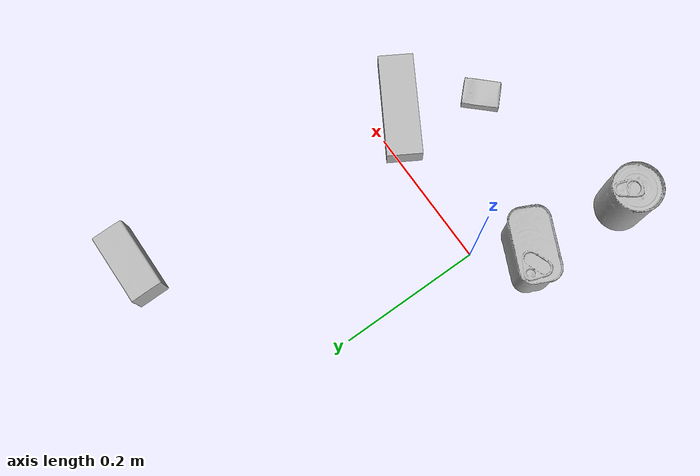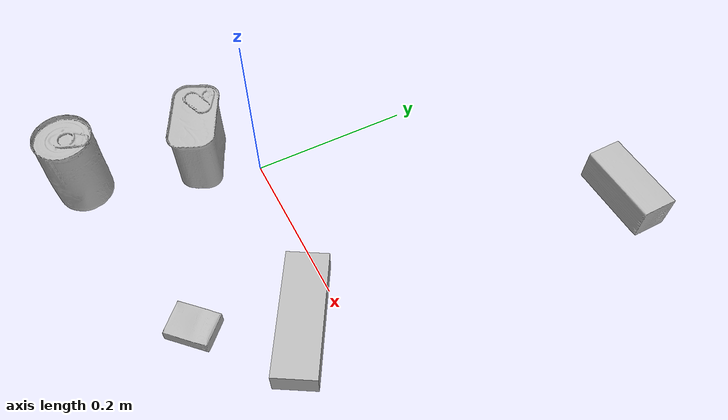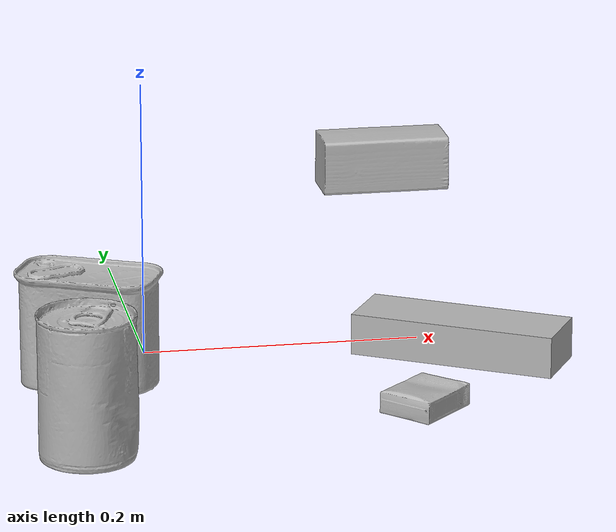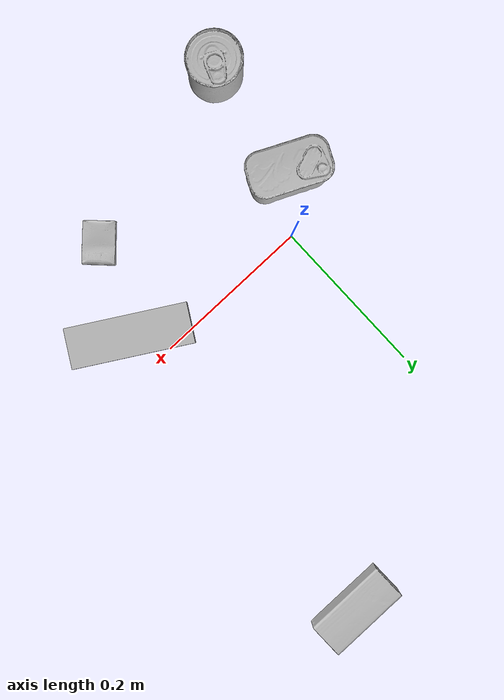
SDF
<sdf version="1.4">
  <world name="default">
    <light name="light1" type="point">
      <pose>0 0 1 0 0 0</pose>
      <diffuse>3 3 3 1</diffuse>
      <specular>3 3 3 1</specular>
    </light>
    <light name="light2" type="point">
      <pose>0 0.5 2 0 0 0</pose>
      <diffuse>1 1 1 1</diffuse>
      <specular>1 1 1 1</specular>
    </light>
    <light name="light3" type="point">
      <pose>0 0.5 2 0 0 0</pose>
      <diffuse>3 3 3 1</diffuse>
      <specular>3 3 3 1</specular>
    </light>
    <scene>
      <ambient>0.7 0.7 0.7</ambient>
    </scene>
    <model name="box1">
      <link name="link_box1">
        <collision name="default">
          <geometry>
            <mesh>
              <uri>model://jenga/collision_meshes/collision.obj</uri>
              <scale>1.0 1.0 1.0</scale>
            </mesh>
          </geometry>
          <surface>
            <friction>
              <ode>
                <mu>0.5</mu>
                <mu2>0.5</mu2>
              </ode>
            </friction>
          <contact>
        <ode>
            <max_vel>0</max_vel>
            <min_depth>0.0001</min_depth>
            <kp>1e8</kp>
        </ode>
    </contact></surface>
        </collision>
        <visual name="default">
          <geometry>
            <mesh>
              <uri>model://jenga/visual_meshes/visual.dae</uri>
              <scale>1.0 1.0 1.0</scale>
            </mesh>
          </geometry>
        </visual>
        <inertial>
          <mass>0.13349448144435883</mass>
          <pose>-2.502855807051674e-07 -0.00010250010382151231 -4.0923401684267446e-05 0.0 -7.342153480750062e-07 0.0</pose>
          <inertia>
            <ixx>3.694116e-05</ixx>
            <iyy>0.0002503123</iyy>
            <izz>0.00026722968</izz>
            <ixy>0</ixy>
            <ixz>0</ixz>
            <iyz>0</iyz>
          </inertia>
        </inertial>
      </link>
      <pose>0.22384610772132874 -0.04415328428149223 0.014999995008111 9.413895632305407e-09 1.9300277319977026e-09 -0.53483813129048</pose>
    </model>
    <model name="box2">
      <link name="link_box2">
        <collision name="default">
          <geometry>
            <mesh>
              <uri>model://cracker_box/collision_meshes/collision.obj</uri>
              <scale>0.25 0.25 0.25</scale>
            </mesh>
          </geometry>
          <surface>
            <friction>
              <ode>
                <mu>0.5</mu>
                <mu2>0.5</mu2>
              </ode>
            </friction>
          <contact>
        <ode>
            <max_vel>0</max_vel>
            <min_depth>0.0001</min_depth>
            <kp>1e8</kp>
        </ode>
    </contact></surface>
        </collision>
        <visual name="default">
          <geometry>
            <mesh>
              <uri>model://cracker_box/visual_meshes/visual.dae</uri>
              <scale>0.25 0.25 0.25</scale>
            </mesh>
          </geometry>
        </visual>
        <inertial>
          <mass>0.02145323157310486</mass>
          <pose>0.00023660292208660394 6.358561950037256e-05 -0.00042573839891701937 -0.00031620765701486096 -0.011106487737550933 0.0025467954675071156</pose>
          <inertia>
            <ixx>3.4104648e-06</ixx>
            <iyy>5.631348e-06</iyy>
            <izz>8.036451e-06</izz>
            <ixy>0</ixy>
            <ixz>0</ixz>
            <iyz>0</iyz>
          </inertia>
        </inertial>
      </link>
      <pose>0.17506389319896698 -0.15187281370162964 0.009120446629822254 -0.011788136887712592 -0.007367107806160074 -2.348995808823903</pose>
    </model>
    <model name="box3">
      <link name="link_box3">
        <collision name="default">
          <geometry>
            <mesh>
              <uri>model://wood_block/collision_meshes/collision.obj</uri>
              <scale>0.5 0.5 0.5</scale>
            </mesh>
          </geometry>
          <surface>
            <friction>
              <ode>
                <mu>0.5</mu>
                <mu2>0.5</mu2>
              </ode>
            </friction>
          <contact>
        <ode>
            <max_vel>0</max_vel>
            <min_depth>0.0001</min_depth>
            <kp>1e8</kp>
        </ode>
    </contact></surface>
        </collision>
        <visual name="default">
          <geometry>
            <mesh>
              <uri>model://wood_block/visual_meshes/visual.dae</uri>
              <scale>0.5 0.5 0.5</scale>
            </mesh>
          </geometry>
        </visual>
        <inertial>
          <mass>0.16313479840755463</mass>
          <pose>-2.9066577553749084e-06 -0.000285404734313488 0.00013204291462898254 -0.05221116552051519 -0.005192696094342747 -0.006861377806143115</pose>
          <inertia>
            <ixx>5.457476e-05</ixx>
            <iyy>0.00017240169</iyy>
            <izz>0.00017175681</izz>
            <ixy>0</ixy>
            <ixz>0</ixz>
            <iyz>0</iyz>
          </inertia>
        </inertial>
      </link>
      <pose>0.24821734428405762 0.3779662847518921 0.02262926660478115 -0.005208618507749247 0.005718656305452014 0.005087984863641942</pose>
    </model>
    <model name="can1">
      <link name="link_can1">
        <collision name="default">
          <geometry>
            <mesh>
              <uri>model://potted_meat_can/collision_meshes/collision.obj</uri>
              <scale>1.0 1.0 1.0</scale>
            </mesh>
          </geometry>
          <surface>
            <friction>
              <ode>
                <mu>0.5</mu>
                <mu2>0.5</mu2>
              </ode>
            </friction>
          <contact>
        <ode>
            <max_vel>0</max_vel>
            <min_depth>0.0001</min_depth>
            <kp>1e8</kp>
        </ode>
    </contact></surface>
        </collision>
        <visual name="default">
          <geometry>
            <mesh>
              <uri>model://potted_meat_can/visual_meshes/visual.dae</uri>
              <scale>1.0 1.0 1.0</scale>
            </mesh>
          </geometry>
        </visual>
        <inertial>
          <mass>0.5782443881034851</mass>
          <pose>0.00022888134117238224 -5.989118290017359e-05 -0.0006367441383190453 -0.028093373189925445 -0.007232601430987569 0.015406267190211613</pose>
          <inertia>
            <ixx>0.0007438508</ixx>
            <iyy>0.00045194585</iyy>
            <izz>0.0005410098</izz>
            <ixy>0</ixy>
            <ixz>0</ixz>
            <iyz>0</iyz>
          </inertia>
        </inertial>
      </link>
      <pose>-0.04594959318637848 -0.057398322969675064 0.04212799668312073 -1.1272144400873107e-07 -1.9259064894817128e-07 -2.022262470911115</pose>
    </model>
    <model name="can2">
      <link name="link_can2">
        <collision name="default">
          <geometry>
            <mesh>
              <uri>model://tomato_soup_can/collision_meshes/collision.obj</uri>
              <scale>1.0 1.0 1.0</scale>
            </mesh>
          </geometry>
          <surface>
            <friction>
              <ode>
                <mu>0.5</mu>
                <mu2>0.5</mu2>
              </ode>
            </friction>
          <contact>
        <ode>
            <max_vel>0</max_vel>
            <min_depth>0.0001</min_depth>
            <kp>1e8</kp>
        </ode>
    </contact></surface>
        </collision>
        <visual name="default">
          <geometry>
            <mesh>
              <uri>model://tomato_soup_can/visual_meshes/visual.dae</uri>
              <scale>1.0 1.0 1.0</scale>
            </mesh>
          </geometry>
        </visual>
        <inertial>
          <mass>0.191082164645195</mass>
          <pose>0.00012652273289859295 0.00010805522470036522 -0.0017973986687138677 0.007020071598615513 0.0004229929517945175 -0.009903241323856832</pose>
          <inertia>
            <ixx>0.0002095054</ixx>
            <iyy>0.00020829454</iyy>
            <izz>0.0001085847</izz>
            <ixy>0</ixy>
            <ixz>0</ixz>
            <iyz>0</iyz>
          </inertia>
        </inertial>
      </link>
      <pose>-0.06514443457126617 -0.20439279079437256 0.05127402022480965 -5.15470354898433e-07 -8.078692293820558e-07 2.338657794945167</pose>
    </model>
  <physics type="ode">
      <max_contacts>50</max_contacts>
      <ode>
        <solver>
          <type>quick</type>
          <iters>75</iters>
        </solver>
        <constraints>
          <contact_max_correcting_vel>0</contact_max_correcting_vel>
          <contact_surface_layer>0</contact_surface_layer>
        </constraints>
      </ode>
    </physics></world>
</sdf>
